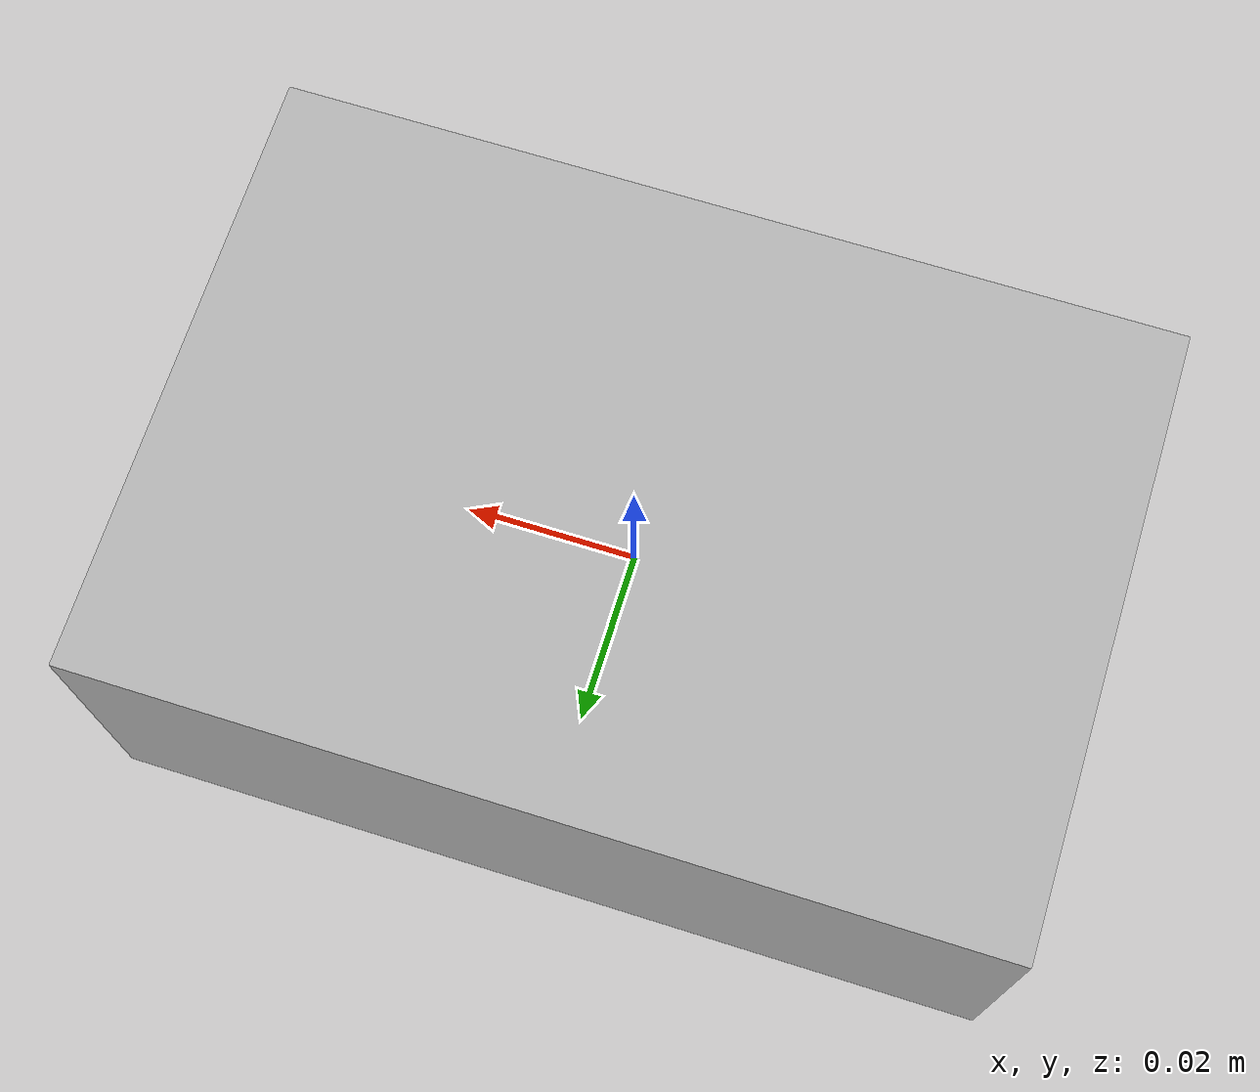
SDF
<?xml version="1.0" ?>
<sdf version="1.6">
  <model name="kelloggs">
    <pose>0 0 0 0 0 0</pose>
    <link name="link">
      <inertial>
        <mass>0.025</mass>
        <inertia>
          <ixx>0.000014133</ixx>
          <ixy>0.0</ixy>
          <ixz>0.0</ixz>
          <iyy>0.000026302</iyy>
          <iyz>0.0</iyz>
          <izz>0.000033769</izz>
        </inertia>
      </inertial>
      <collision name="collision">
        <geometry>
          <box>
            <size>0.105 0.072 0.04</size>
          </box>
        </geometry>
        <surface>
          <friction>
            <ode>
              <mu>1.0</mu>
              <mu2>1.0</mu2>
            </ode>
          </friction>
          <contact>
            <ode>
              <kp>10000000.0</kp>
              <kd>1.0</kd>
              <min_depth>0.001</min_depth>
              <max_vel>0.1</max_vel>
            </ode>
          </contact>
        </surface>
      </collision>
      <visual name="visual">
        <pose>0 0 0 0 0 0</pose>
        <geometry>
          <mesh>
            <uri>model://kelloggs/material/kelloggs.dae</uri>
            <scale>0.5 0.5 0.5</scale>
          </mesh>
        </geometry>
      </visual>
    </link>
  </model>
</sdf>
